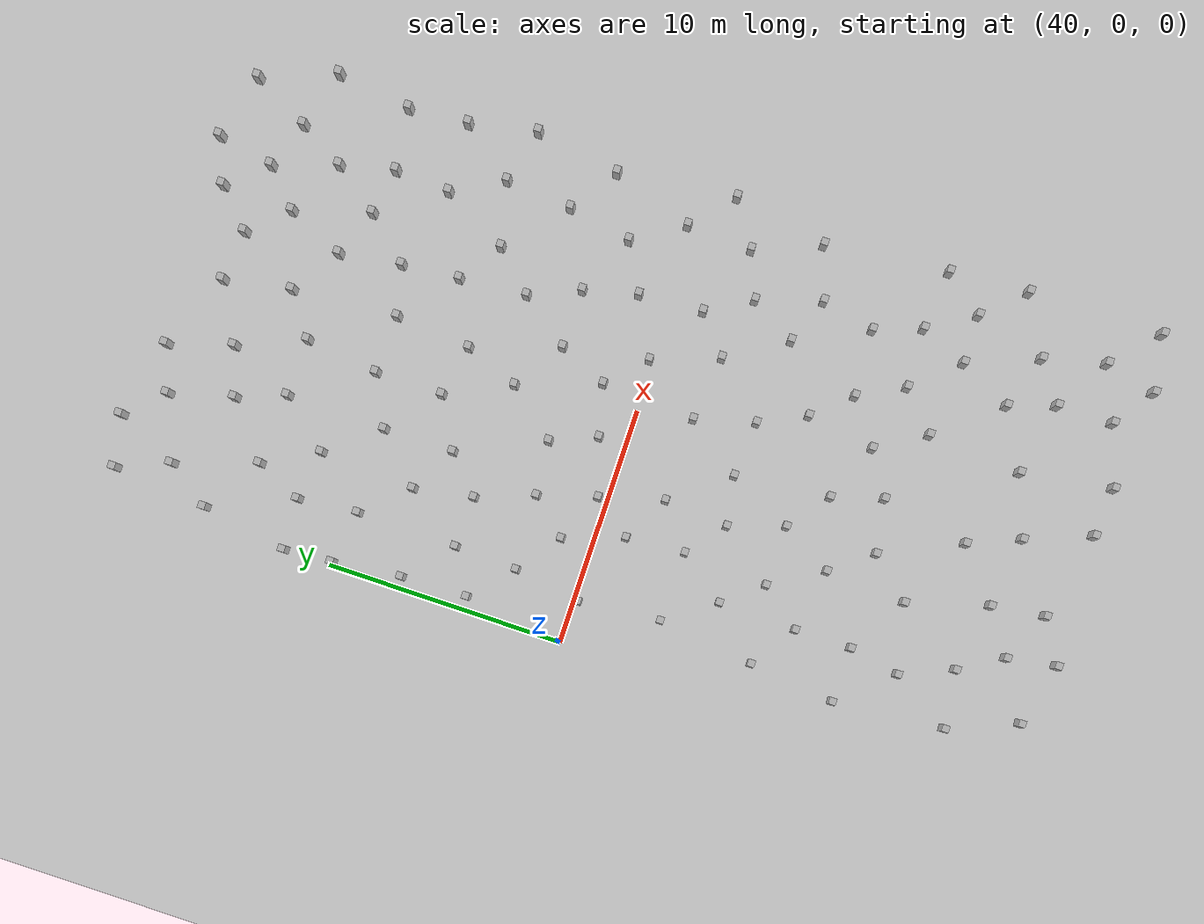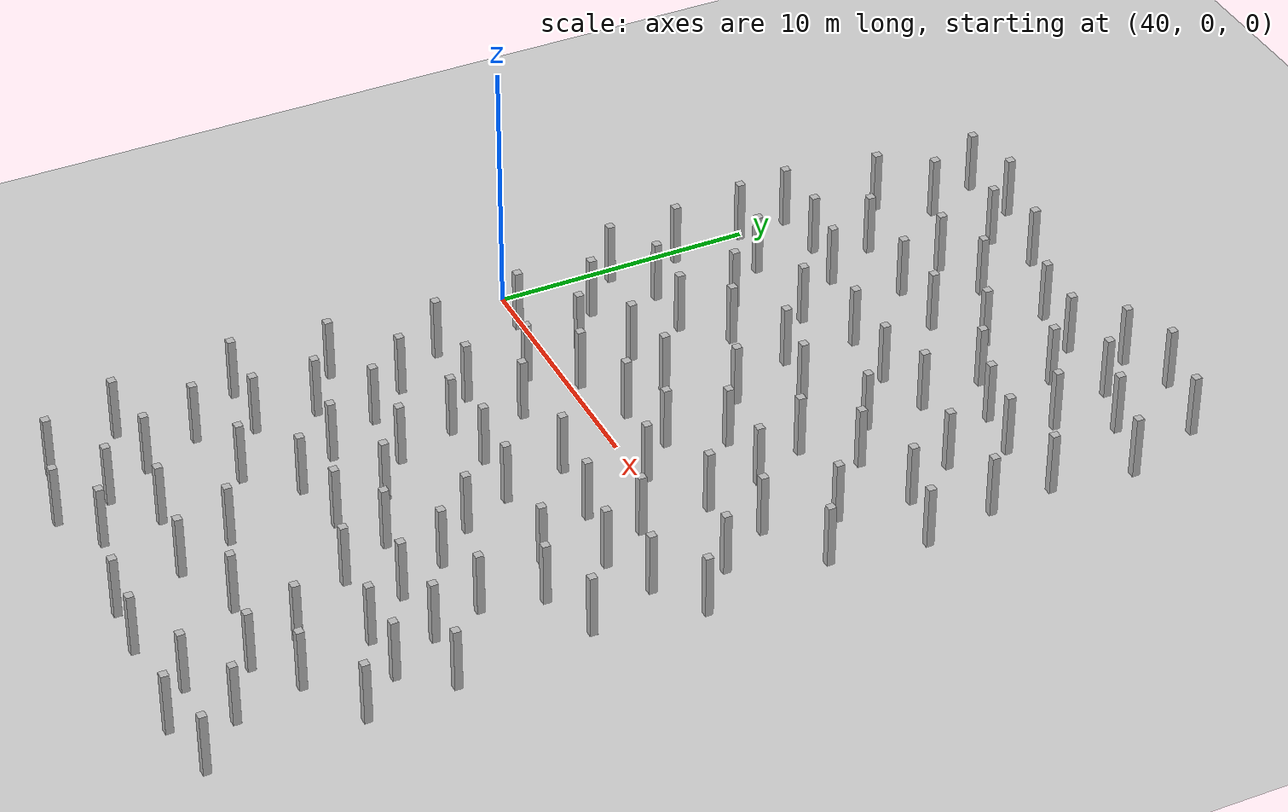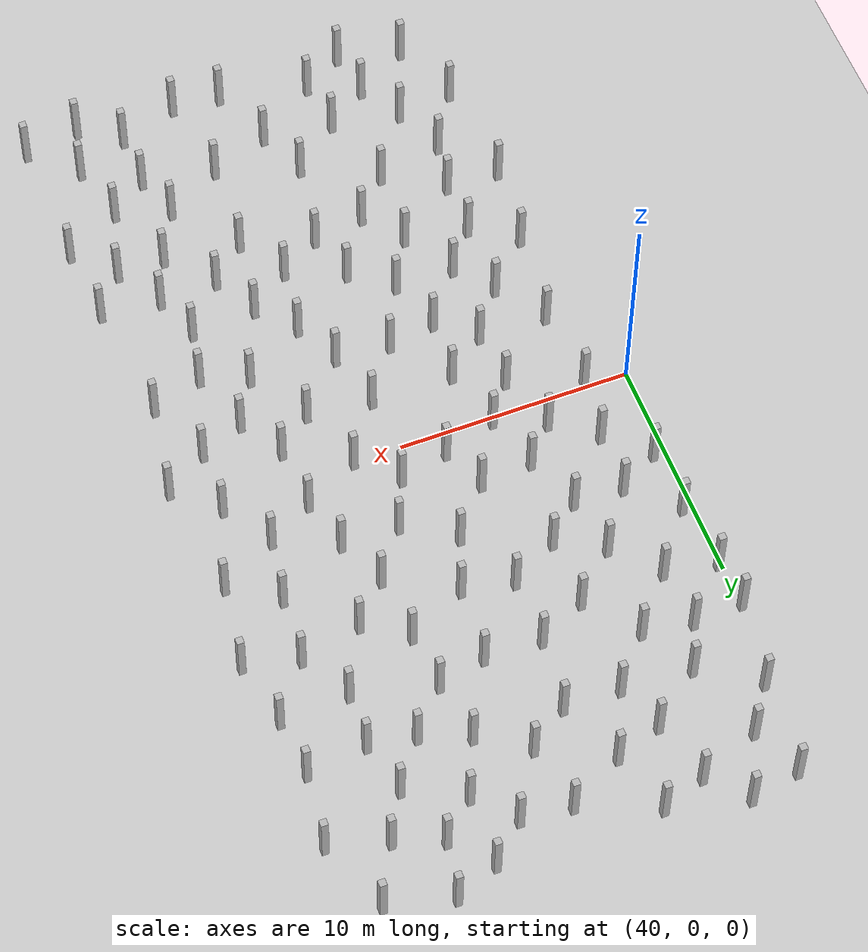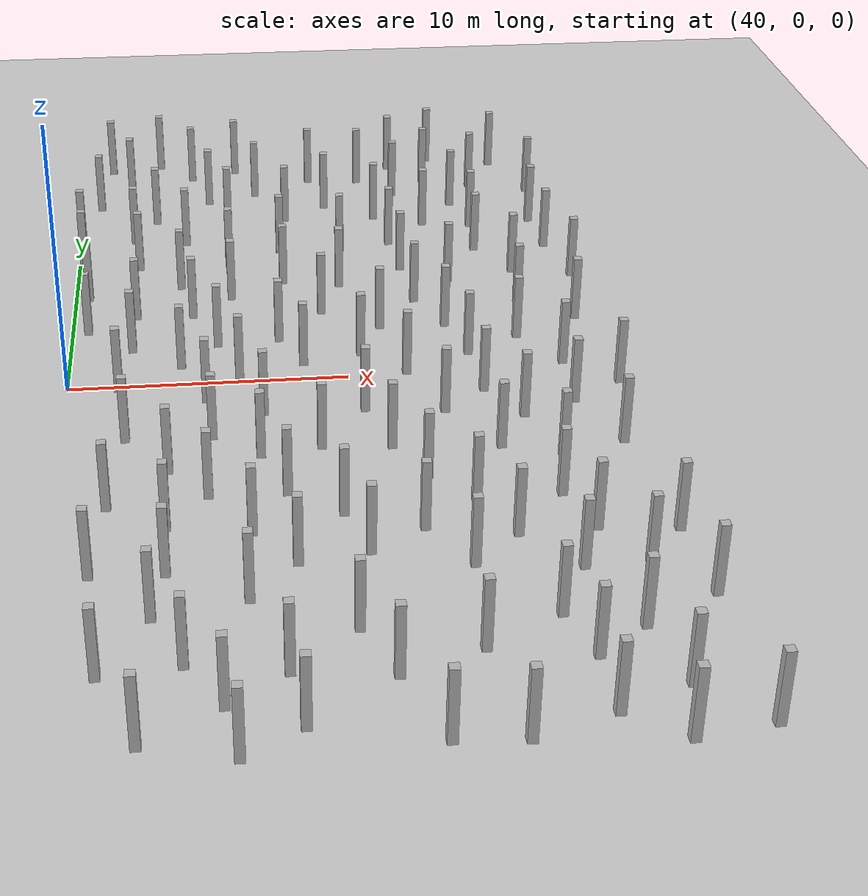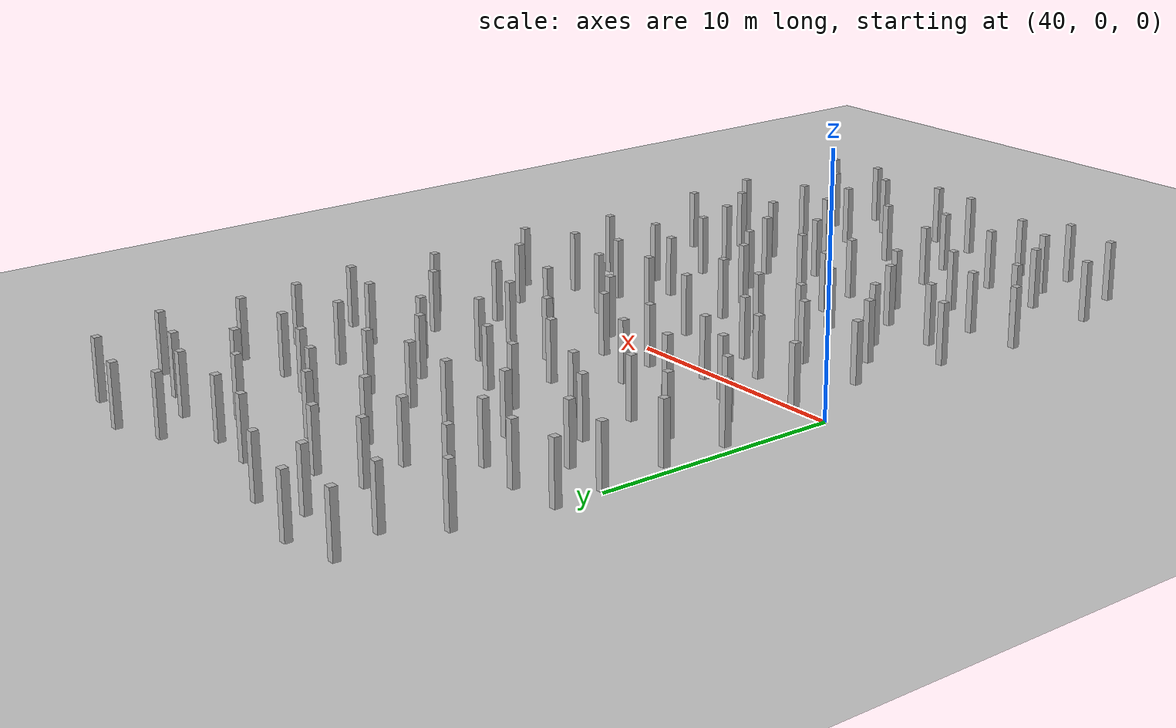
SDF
<sdf version="1.6">
 <world name="random_boxes_100x40_600">
  <include><uri>model://sun</uri></include>
  <include><uri>model://ground_plane</uri></include>
  <model name="box_96">
   <static>true</static>
   <pose>40.504 6.997 1.250 0 0 0</pose>
   <link name="link">
    <visual name="visual"><geometry><box><size>0.3 0.3 2.5</size></box></geometry></visual>
    <collision name="collision"><geometry><box><size>0.3 0.3 2.5</size></box></geometry></collision>
   </link>
  </model>
  <model name="box_112">
   <static>true</static>
   <pose>40.581 4.208 1.250 0 0 0</pose>
   <link name="link">
    <visual name="visual"><geometry><box><size>0.3 0.3 2.5</size></box></geometry></visual>
    <collision name="collision"><geometry><box><size>0.3 0.3 2.5</size></box></geometry></collision>
   </link>
  </model>
  <model name="box_133">
   <static>true</static>
   <pose>40.184 9.882 1.250 0 0 0</pose>
   <link name="link">
    <visual name="visual"><geometry><box><size>0.3 0.3 2.5</size></box></geometry></visual>
    <collision name="collision"><geometry><box><size>0.3 0.3 2.5</size></box></geometry></collision>
   </link>
  </model>
  <model name="box_139">
   <static>true</static>
   <pose>42.430 9.506 1.250 0 0 0</pose>
   <link name="link">
    <visual name="visual"><geometry><box><size>0.3 0.3 2.5</size></box></geometry></visual>
    <collision name="collision"><geometry><box><size>0.3 0.3 2.5</size></box></geometry></collision>
   </link>
  </model>
  <model name="box_142">
   <static>true</static>
   <pose>44.306 11.709 1.250 0 0 0</pose>
   <link name="link">
    <visual name="visual"><geometry><box><size>0.3 0.3 2.5</size></box></geometry></visual>
    <collision name="collision"><geometry><box><size>0.3 0.3 2.5</size></box></geometry></collision>
   </link>
  </model>
  <model name="box_146">
   <static>true</static>
   <pose>46.075 13.763 1.250 0 0 0</pose>
   <link name="link">
    <visual name="visual"><geometry><box><size>0.3 0.3 2.5</size></box></geometry></visual>
    <collision name="collision"><geometry><box><size>0.3 0.3 2.5</size></box></geometry></collision>
   </link>
  </model>
  <model name="box_152">
   <static>true</static>
   <pose>42.374 5.282 1.250 0 0 0</pose>
   <link name="link">
    <visual name="visual"><geometry><box><size>0.3 0.3 2.5</size></box></geometry></visual>
    <collision name="collision"><geometry><box><size>0.3 0.3 2.5</size></box></geometry></collision>
   </link>
  </model>
  <model name="box_153">
   <static>true</static>
   <pose>48.497 13.717 1.250 0 0 0</pose>
   <link name="link">
    <visual name="visual"><geometry><box><size>0.3 0.3 2.5</size></box></geometry></visual>
    <collision name="collision"><geometry><box><size>0.3 0.3 2.5</size></box></geometry></collision>
   </link>
  </model>
  <model name="box_157">
   <static>true</static>
   <pose>42.194 12.027 1.250 0 0 0</pose>
   <link name="link">
    <visual name="visual"><geometry><box><size>0.3 0.3 2.5</size></box></geometry></visual>
    <collision name="collision"><geometry><box><size>0.3 0.3 2.5</size></box></geometry></collision>
   </link>
  </model>
  <model name="box_159">
   <static>true</static>
   <pose>40.045 11.901 1.250 0 0 0</pose>
   <link name="link">
    <visual name="visual"><geometry><box><size>0.3 0.3 2.5</size></box></geometry></visual>
    <collision name="collision"><geometry><box><size>0.3 0.3 2.5</size></box></geometry></collision>
   </link>
  </model>
  <model name="box_160">
   <static>true</static>
   <pose>42.262 2.644 1.250 0 0 0</pose>
   <link name="link">
    <visual name="visual"><geometry><box><size>0.3 0.3 2.5</size></box></geometry></visual>
    <collision name="collision"><geometry><box><size>0.3 0.3 2.5</size></box></geometry></collision>
   </link>
  </model>
  <model name="box_167">
   <static>true</static>
   <pose>41.956 17.371 1.250 0 0 0</pose>
   <link name="link">
    <visual name="visual"><geometry><box><size>0.3 0.3 2.5</size></box></geometry></visual>
    <collision name="collision"><geometry><box><size>0.3 0.3 2.5</size></box></geometry></collision>
   </link>
  </model>
  <model name="box_169">
   <static>true</static>
   <pose>44.077 7.694 1.250 0 0 0</pose>
   <link name="link">
    <visual name="visual"><geometry><box><size>0.3 0.3 2.5</size></box></geometry></visual>
    <collision name="collision"><geometry><box><size>0.3 0.3 2.5</size></box></geometry></collision>
   </link>
  </model>
  <model name="box_178">
   <static>true</static>
   <pose>50.248 14.978 1.250 0 0 0</pose>
   <link name="link">
    <visual name="visual"><geometry><box><size>0.3 0.3 2.5</size></box></geometry></visual>
    <collision name="collision"><geometry><box><size>0.3 0.3 2.5</size></box></geometry></collision>
   </link>
  </model>
  <model name="box_179">
   <static>true</static>
   <pose>41.065 19.530 1.250 0 0 0</pose>
   <link name="link">
    <visual name="visual"><geometry><box><size>0.3 0.3 2.5</size></box></geometry></visual>
    <collision name="collision"><geometry><box><size>0.3 0.3 2.5</size></box></geometry></collision>
   </link>
  </model>
  <model name="box_181">
   <static>true</static>
   <pose>52.267 13.645 1.250 0 0 0</pose>
   <link name="link">
    <visual name="visual"><geometry><box><size>0.3 0.3 2.5</size></box></geometry></visual>
    <collision name="collision"><geometry><box><size>0.3 0.3 2.5</size></box></geometry></collision>
   </link>
  </model>
  <model name="box_188">
   <static>true</static>
   <pose>54.278 12.858 1.250 0 0 0</pose>
   <link name="link">
    <visual name="visual"><geometry><box><size>0.3 0.3 2.5</size></box></geometry></visual>
    <collision name="collision"><geometry><box><size>0.3 0.3 2.5</size></box></geometry></collision>
   </link>
  </model>
  <model name="box_191">
   <static>true</static>
   <pose>44.047 1.301 1.250 0 0 0</pose>
   <link name="link">
    <visual name="visual"><geometry><box><size>0.3 0.3 2.5</size></box></geometry></visual>
    <collision name="collision"><geometry><box><size>0.3 0.3 2.5</size></box></geometry></collision>
   </link>
  </model>
  <model name="box_193">
   <static>true</static>
   <pose>52.640 11.046 1.250 0 0 0</pose>
   <link name="link">
    <visual name="visual"><geometry><box><size>0.3 0.3 2.5</size></box></geometry></visual>
    <collision name="collision"><geometry><box><size>0.3 0.3 2.5</size></box></geometry></collision>
   </link>
  </model>
  <model name="box_195">
   <static>true</static>
   <pose>56.251 12.506 1.250 0 0 0</pose>
   <link name="link">
    <visual name="visual"><geometry><box><size>0.3 0.3 2.5</size></box></geometry></visual>
    <collision name="collision"><geometry><box><size>0.3 0.3 2.5</size></box></geometry></collision>
   </link>
  </model>
  <model name="box_198">
   <static>true</static>
   <pose>56.090 10.172 1.250 0 0 0</pose>
   <link name="link">
    <visual name="visual"><geometry><box><size>0.3 0.3 2.5</size></box></geometry></visual>
    <collision name="collision"><geometry><box><size>0.3 0.3 2.5</size></box></geometry></collision>
   </link>
  </model>
  <model name="box_200">
   <static>true</static>
   <pose>55.722 14.779 1.250 0 0 0</pose>
   <link name="link">
    <visual name="visual"><geometry><box><size>0.3 0.3 2.5</size></box></geometry></visual>
    <collision name="collision"><geometry><box><size>0.3 0.3 2.5</size></box></geometry></collision>
   </link>
  </model>
  <model name="box_203">
   <static>true</static>
   <pose>43.081 13.954 1.250 0 0 0</pose>
   <link name="link">
    <visual name="visual"><geometry><box><size>0.3 0.3 2.5</size></box></geometry></visual>
    <collision name="collision"><geometry><box><size>0.3 0.3 2.5</size></box></geometry></collision>
   </link>
  </model>
  <model name="box_206">
   <static>true</static>
   <pose>56.833 16.699 1.250 0 0 0</pose>
   <link name="link">
    <visual name="visual"><geometry><box><size>0.3 0.3 2.5</size></box></geometry></visual>
    <collision name="collision"><geometry><box><size>0.3 0.3 2.5</size></box></geometry></collision>
   </link>
  </model>
  <model name="box_208">
   <static>true</static>
   <pose>45.404 2.808 1.250 0 0 0</pose>
   <link name="link">
    <visual name="visual"><geometry><box><size>0.3 0.3 2.5</size></box></geometry></visual>
    <collision name="collision"><geometry><box><size>0.3 0.3 2.5</size></box></geometry></collision>
   </link>
  </model>
  <model name="box_209">
   <static>true</static>
   <pose>46.119 0.390 1.250 0 0 0</pose>
   <link name="link">
    <visual name="visual"><geometry><box><size>0.3 0.3 2.5</size></box></geometry></visual>
    <collision name="collision"><geometry><box><size>0.3 0.3 2.5</size></box></geometry></collision>
   </link>
  </model>
  <model name="box_212">
   <static>true</static>
   <pose>40.682 15.530 1.250 0 0 0</pose>
   <link name="link">
    <visual name="visual"><geometry><box><size>0.3 0.3 2.5</size></box></geometry></visual>
    <collision name="collision"><geometry><box><size>0.3 0.3 2.5</size></box></geometry></collision>
   </link>
  </model>
  <model name="box_215">
   <static>true</static>
   <pose>59.290 15.971 1.250 0 0 0</pose>
   <link name="link">
    <visual name="visual"><geometry><box><size>0.3 0.3 2.5</size></box></geometry></visual>
    <collision name="collision"><geometry><box><size>0.3 0.3 2.5</size></box></geometry></collision>
   </link>
  </model>
  <model name="box_217">
   <static>true</static>
   <pose>58.841 12.821 1.250 0 0 0</pose>
   <link name="link">
    <visual name="visual"><geometry><box><size>0.3 0.3 2.5</size></box></geometry></visual>
    <collision name="collision"><geometry><box><size>0.3 0.3 2.5</size></box></geometry></collision>
   </link>
  </model>
  <model name="box_218">
   <static>true</static>
   <pose>46.013 9.579 1.250 0 0 0</pose>
   <link name="link">
    <visual name="visual"><geometry><box><size>0.3 0.3 2.5</size></box></geometry></visual>
    <collision name="collision"><geometry><box><size>0.3 0.3 2.5</size></box></geometry></collision>
   </link>
  </model>
  <model name="box_219">
   <static>true</static>
   <pose>59.024 10.299 1.250 0 0 0</pose>
   <link name="link">
    <visual name="visual"><geometry><box><size>0.3 0.3 2.5</size></box></geometry></visual>
    <collision name="collision"><geometry><box><size>0.3 0.3 2.5</size></box></geometry></collision>
   </link>
  </model>
  <model name="box_221">
   <static>true</static>
   <pose>46.872 -2.263 1.250 0 0 0</pose>
   <link name="link">
    <visual name="visual"><geometry><box><size>0.3 0.3 2.5</size></box></geometry></visual>
    <collision name="collision"><geometry><box><size>0.3 0.3 2.5</size></box></geometry></collision>
   </link>
  </model>
  <model name="box_222">
   <static>true</static>
   <pose>45.322 15.791 1.250 0 0 0</pose>
   <link name="link">
    <visual name="visual"><geometry><box><size>0.3 0.3 2.5</size></box></geometry></visual>
    <collision name="collision"><geometry><box><size>0.3 0.3 2.5</size></box></geometry></collision>
   </link>
  </model>
  <model name="box_223">
   <static>true</static>
   <pose>58.108 19.089 1.250 0 0 0</pose>
   <link name="link">
    <visual name="visual"><geometry><box><size>0.3 0.3 2.5</size></box></geometry></visual>
    <collision name="collision"><geometry><box><size>0.3 0.3 2.5</size></box></geometry></collision>
   </link>
  </model>
  <model name="box_224">
   <static>true</static>
   <pose>48.095 7.789 1.250 0 0 0</pose>
   <link name="link">
    <visual name="visual"><geometry><box><size>0.3 0.3 2.5</size></box></geometry></visual>
    <collision name="collision"><geometry><box><size>0.3 0.3 2.5</size></box></geometry></collision>
   </link>
  </model>
  <model name="box_227">
   <static>true</static>
   <pose>59.597 7.456 1.250 0 0 0</pose>
   <link name="link">
    <visual name="visual"><geometry><box><size>0.3 0.3 2.5</size></box></geometry></visual>
    <collision name="collision"><geometry><box><size>0.3 0.3 2.5</size></box></geometry></collision>
   </link>
  </model>
  <model name="box_232">
   <static>true</static>
   <pose>49.408 5.093 1.250 0 0 0</pose>
   <link name="link">
    <visual name="visual"><geometry><box><size>0.3 0.3 2.5</size></box></geometry></visual>
    <collision name="collision"><geometry><box><size>0.3 0.3 2.5</size></box></geometry></collision>
   </link>
  </model>
  <model name="box_235">
   <static>true</static>
   <pose>47.673 3.040 1.250 0 0 0</pose>
   <link name="link">
    <visual name="visual"><geometry><box><size>0.3 0.3 2.5</size></box></geometry></visual>
    <collision name="collision"><geometry><box><size>0.3 0.3 2.5</size></box></geometry></collision>
   </link>
  </model>
  <model name="box_236">
   <static>true</static>
   <pose>45.078 -3.683 1.250 0 0 0</pose>
   <link name="link">
    <visual name="visual"><geometry><box><size>0.3 0.3 2.5</size></box></geometry></visual>
    <collision name="collision"><geometry><box><size>0.3 0.3 2.5</size></box></geometry></collision>
   </link>
  </model>
  <model name="box_237">
   <static>true</static>
   <pose>42.136 -3.605 1.250 0 0 0</pose>
   <link name="link">
    <visual name="visual"><geometry><box><size>0.3 0.3 2.5</size></box></geometry></visual>
    <collision name="collision"><geometry><box><size>0.3 0.3 2.5</size></box></geometry></collision>
   </link>
  </model>
  <model name="box_239">
   <static>true</static>
   <pose>52.842 8.625 1.250 0 0 0</pose>
   <link name="link">
    <visual name="visual"><geometry><box><size>0.3 0.3 2.5</size></box></geometry></visual>
    <collision name="collision"><geometry><box><size>0.3 0.3 2.5</size></box></geometry></collision>
   </link>
  </model>
  <model name="box_241">
   <static>true</static>
   <pose>46.654 -4.972 1.250 0 0 0</pose>
   <link name="link">
    <visual name="visual"><geometry><box><size>0.3 0.3 2.5</size></box></geometry></visual>
    <collision name="collision"><geometry><box><size>0.3 0.3 2.5</size></box></geometry></collision>
   </link>
  </model>
  <model name="box_242">
   <static>true</static>
   <pose>47.407 -7.288 1.250 0 0 0</pose>
   <link name="link">
    <visual name="visual"><geometry><box><size>0.3 0.3 2.5</size></box></geometry></visual>
    <collision name="collision"><geometry><box><size>0.3 0.3 2.5</size></box></geometry></collision>
   </link>
  </model>
  <model name="box_243">
   <static>true</static>
   <pose>49.747 17.812 1.250 0 0 0</pose>
   <link name="link">
    <visual name="visual"><geometry><box><size>0.3 0.3 2.5</size></box></geometry></visual>
    <collision name="collision"><geometry><box><size>0.3 0.3 2.5</size></box></geometry></collision>
   </link>
  </model>
  <model name="box_246">
   <static>true</static>
   <pose>49.115 -8.603 1.250 0 0 0</pose>
   <link name="link">
    <visual name="visual"><geometry><box><size>0.3 0.3 2.5</size></box></geometry></visual>
    <collision name="collision"><geometry><box><size>0.3 0.3 2.5</size></box></geometry></collision>
   </link>
  </model>
  <model name="box_247">
   <static>true</static>
   <pose>51.511 3.712 1.250 0 0 0</pose>
   <link name="link">
    <visual name="visual"><geometry><box><size>0.3 0.3 2.5</size></box></geometry></visual>
    <collision name="collision"><geometry><box><size>0.3 0.3 2.5</size></box></geometry></collision>
   </link>
  </model>
  <model name="box_255">
   <static>true</static>
   <pose>46.195 -9.420 1.250 0 0 0</pose>
   <link name="link">
    <visual name="visual"><geometry><box><size>0.3 0.3 2.5</size></box></geometry></visual>
    <collision name="collision"><geometry><box><size>0.3 0.3 2.5</size></box></geometry></collision>
   </link>
  </model>
  <model name="box_257">
   <static>true</static>
   <pose>44.616 18.444 1.250 0 0 0</pose>
   <link name="link">
    <visual name="visual"><geometry><box><size>0.3 0.3 2.5</size></box></geometry></visual>
    <collision name="collision"><geometry><box><size>0.3 0.3 2.5</size></box></geometry></collision>
   </link>
  </model>
  <model name="box_260">
   <static>true</static>
   <pose>51.550 -9.616 1.250 0 0 0</pose>
   <link name="link">
    <visual name="visual"><geometry><box><size>0.3 0.3 2.5</size></box></geometry></visual>
    <collision name="collision"><geometry><box><size>0.3 0.3 2.5</size></box></geometry></collision>
   </link>
  </model>
  <model name="box_261">
   <static>true</static>
   <pose>53.063 5.789 1.250 0 0 0</pose>
   <link name="link">
    <visual name="visual"><geometry><box><size>0.3 0.3 2.5</size></box></geometry></visual>
    <collision name="collision"><geometry><box><size>0.3 0.3 2.5</size></box></geometry></collision>
   </link>
  </model>
  <model name="box_262">
   <static>true</static>
   <pose>43.588 -5.662 1.250 0 0 0</pose>
   <link name="link">
    <visual name="visual"><geometry><box><size>0.3 0.3 2.5</size></box></geometry></visual>
    <collision name="collision"><geometry><box><size>0.3 0.3 2.5</size></box></geometry></collision>
   </link>
  </model>
  <model name="box_271">
   <static>true</static>
   <pose>44.512 5.201 1.250 0 0 0</pose>
   <link name="link">
    <visual name="visual"><geometry><box><size>0.3 0.3 2.5</size></box></geometry></visual>
    <collision name="collision"><geometry><box><size>0.3 0.3 2.5</size></box></geometry></collision>
   </link>
  </model>
  <model name="box_273">
   <static>true</static>
   <pose>50.602 1.669 1.250 0 0 0</pose>
   <link name="link">
    <visual name="visual"><geometry><box><size>0.3 0.3 2.5</size></box></geometry></visual>
    <collision name="collision"><geometry><box><size>0.3 0.3 2.5</size></box></geometry></collision>
   </link>
  </model>
  <model name="box_274">
   <static>true</static>
   <pose>52.125 0.177 1.250 0 0 0</pose>
   <link name="link">
    <visual name="visual"><geometry><box><size>0.3 0.3 2.5</size></box></geometry></visual>
    <collision name="collision"><geometry><box><size>0.3 0.3 2.5</size></box></geometry></collision>
   </link>
  </model>
  <model name="box_276">
   <static>true</static>
   <pose>59.013 3.860 1.250 0 0 0</pose>
   <link name="link">
    <visual name="visual"><geometry><box><size>0.3 0.3 2.5</size></box></geometry></visual>
    <collision name="collision"><geometry><box><size>0.3 0.3 2.5</size></box></geometry></collision>
   </link>
  </model>
  <model name="box_277">
   <static>true</static>
   <pose>50.564 10.546 1.250 0 0 0</pose>
   <link name="link">
    <visual name="visual"><geometry><box><size>0.3 0.3 2.5</size></box></geometry></visual>
    <collision name="collision"><geometry><box><size>0.3 0.3 2.5</size></box></geometry></collision>
   </link>
  </model>
  <model name="box_278">
   <static>true</static>
   <pose>52.002 -6.739 1.250 0 0 0</pose>
   <link name="link">
    <visual name="visual"><geometry><box><size>0.3 0.3 2.5</size></box></geometry></visual>
    <collision name="collision"><geometry><box><size>0.3 0.3 2.5</size></box></geometry></collision>
   </link>
  </model>
  <model name="box_279">
   <static>true</static>
   <pose>44.910 -1.213 1.250 0 0 0</pose>
   <link name="link">
    <visual name="visual"><geometry><box><size>0.3 0.3 2.5</size></box></geometry></visual>
    <collision name="collision"><geometry><box><size>0.3 0.3 2.5</size></box></geometry></collision>
   </link>
  </model>
  <model name="box_280">
   <static>true</static>
   <pose>54.838 17.438 1.250 0 0 0</pose>
   <link name="link">
    <visual name="visual"><geometry><box><size>0.3 0.3 2.5</size></box></geometry></visual>
    <collision name="collision"><geometry><box><size>0.3 0.3 2.5</size></box></geometry></collision>
   </link>
  </model>
  <model name="box_281">
   <static>true</static>
   <pose>46.527 19.153 1.250 0 0 0</pose>
   <link name="link">
    <visual name="visual"><geometry><box><size>0.3 0.3 2.5</size></box></geometry></visual>
    <collision name="collision"><geometry><box><size>0.3 0.3 2.5</size></box></geometry></collision>
   </link>
  </model>
  <model name="box_284">
   <static>true</static>
   <pose>51.051 -4.790 1.250 0 0 0</pose>
   <link name="link">
    <visual name="visual"><geometry><box><size>0.3 0.3 2.5</size></box></geometry></visual>
    <collision name="collision"><geometry><box><size>0.3 0.3 2.5</size></box></geometry></collision>
   </link>
  </model>
  <model name="box_285">
   <static>true</static>
   <pose>48.465 1.135 1.250 0 0 0</pose>
   <link name="link">
    <visual name="visual"><geometry><box><size>0.3 0.3 2.5</size></box></geometry></visual>
    <collision name="collision"><geometry><box><size>0.3 0.3 2.5</size></box></geometry></collision>
   </link>
  </model>
  <model name="box_286">
   <static>true</static>
   <pose>41.823 -0.169 1.250 0 0 0</pose>
   <link name="link">
    <visual name="visual"><geometry><box><size>0.3 0.3 2.5</size></box></geometry></visual>
    <collision name="collision"><geometry><box><size>0.3 0.3 2.5</size></box></geometry></collision>
   </link>
  </model>
  <model name="box_290">
   <static>true</static>
   <pose>57.287 8.044 1.250 0 0 0</pose>
   <link name="link">
    <visual name="visual"><geometry><box><size>0.3 0.3 2.5</size></box></geometry></visual>
    <collision name="collision"><geometry><box><size>0.3 0.3 2.5</size></box></geometry></collision>
   </link>
  </model>
  <model name="box_296">
   <static>true</static>
   <pose>57.036 5.219 1.250 0 0 0</pose>
   <link name="link">
    <visual name="visual"><geometry><box><size>0.3 0.3 2.5</size></box></geometry></visual>
    <collision name="collision"><geometry><box><size>0.3 0.3 2.5</size></box></geometry></collision>
   </link>
  </model>
  <model name="box_297">
   <static>true</static>
   <pose>59.614 -1.136 1.250 0 0 0</pose>
   <link name="link">
    <visual name="visual"><geometry><box><size>0.3 0.3 2.5</size></box></geometry></visual>
    <collision name="collision"><geometry><box><size>0.3 0.3 2.5</size></box></geometry></collision>
   </link>
  </model>
  <model name="box_299">
   <static>true</static>
   <pose>53.134 -2.615 1.250 0 0 0</pose>
   <link name="link">
    <visual name="visual"><geometry><box><size>0.3 0.3 2.5</size></box></geometry></visual>
    <collision name="collision"><geometry><box><size>0.3 0.3 2.5</size></box></geometry></collision>
   </link>
  </model>
  <model name="box_300">
   <static>true</static>
   <pose>48.109 10.636 1.250 0 0 0</pose>
   <link name="link">
    <visual name="visual"><geometry><box><size>0.3 0.3 2.5</size></box></geometry></visual>
    <collision name="collision"><geometry><box><size>0.3 0.3 2.5</size></box></geometry></collision>
   </link>
  </model>
  <model name="box_301">
   <static>true</static>
   <pose>43.514 -8.942 1.250 0 0 0</pose>
   <link name="link">
    <visual name="visual"><geometry><box><size>0.3 0.3 2.5</size></box></geometry></visual>
    <collision name="collision"><geometry><box><size>0.3 0.3 2.5</size></box></geometry></collision>
   </link>
  </model>
  <model name="box_302">
   <static>true</static>
   <pose>53.442 19.043 1.250 0 0 0</pose>
   <link name="link">
    <visual name="visual"><geometry><box><size>0.3 0.3 2.5</size></box></geometry></visual>
    <collision name="collision"><geometry><box><size>0.3 0.3 2.5</size></box></geometry></collision>
   </link>
  </model>
  <model name="box_303">
   <static>true</static>
   <pose>47.329 16.483 1.250 0 0 0</pose>
   <link name="link">
    <visual name="visual"><geometry><box><size>0.3 0.3 2.5</size></box></geometry></visual>
    <collision name="collision"><geometry><box><size>0.3 0.3 2.5</size></box></geometry></collision>
   </link>
  </model>
  <model name="box_307">
   <static>true</static>
   <pose>54.701 -5.085 1.250 0 0 0</pose>
   <link name="link">
    <visual name="visual"><geometry><box><size>0.3 0.3 2.5</size></box></geometry></visual>
    <collision name="collision"><geometry><box><size>0.3 0.3 2.5</size></box></geometry></collision>
   </link>
  </model>
  <model name="box_310">
   <static>true</static>
   <pose>56.658 -5.843 1.250 0 0 0</pose>
   <link name="link">
    <visual name="visual"><geometry><box><size>0.3 0.3 2.5</size></box></geometry></visual>
    <collision name="collision"><geometry><box><size>0.3 0.3 2.5</size></box></geometry></collision>
   </link>
  </model>
  <model name="box_315">
   <static>true</static>
   <pose>54.546 1.432 1.250 0 0 0</pose>
   <link name="link">
    <visual name="visual"><geometry><box><size>0.3 0.3 2.5</size></box></geometry></visual>
    <collision name="collision"><geometry><box><size>0.3 0.3 2.5</size></box></geometry></collision>
   </link>
  </model>
  <model name="box_316">
   <static>true</static>
   <pose>46.019 6.617 1.250 0 0 0</pose>
   <link name="link">
    <visual name="visual"><geometry><box><size>0.3 0.3 2.5</size></box></geometry></visual>
    <collision name="collision"><geometry><box><size>0.3 0.3 2.5</size></box></geometry></collision>
   </link>
  </model>
  <model name="box_317">
   <static>true</static>
   <pose>54.383 -10.194 1.250 0 0 0</pose>
   <link name="link">
    <visual name="visual"><geometry><box><size>0.3 0.3 2.5</size></box></geometry></visual>
    <collision name="collision"><geometry><box><size>0.3 0.3 2.5</size></box></geometry></collision>
   </link>
  </model>
  <model name="box_318">
   <static>true</static>
   <pose>57.740 -2.351 1.250 0 0 0</pose>
   <link name="link">
    <visual name="visual"><geometry><box><size>0.3 0.3 2.5</size></box></geometry></visual>
    <collision name="collision"><geometry><box><size>0.3 0.3 2.5</size></box></geometry></collision>
   </link>
  </model>
  <model name="box_321">
   <static>true</static>
   <pose>55.821 -3.155 1.250 0 0 0</pose>
   <link name="link">
    <visual name="visual"><geometry><box><size>0.3 0.3 2.5</size></box></geometry></visual>
    <collision name="collision"><geometry><box><size>0.3 0.3 2.5</size></box></geometry></collision>
   </link>
  </model>
  <model name="box_327">
   <static>true</static>
   <pose>54.619 7.412 1.250 0 0 0</pose>
   <link name="link">
    <visual name="visual"><geometry><box><size>0.3 0.3 2.5</size></box></geometry></visual>
    <collision name="collision"><geometry><box><size>0.3 0.3 2.5</size></box></geometry></collision>
   </link>
  </model>
  <model name="box_331">
   <static>true</static>
   <pose>50.272 7.360 1.250 0 0 0</pose>
   <link name="link">
    <visual name="visual"><geometry><box><size>0.3 0.3 2.5</size></box></geometry></visual>
    <collision name="collision"><geometry><box><size>0.3 0.3 2.5</size></box></geometry></collision>
   </link>
  </model>
  <model name="box_333">
   <static>true</static>
   <pose>56.534 2.529 1.250 0 0 0</pose>
   <link name="link">
    <visual name="visual"><geometry><box><size>0.3 0.3 2.5</size></box></geometry></visual>
    <collision name="collision"><geometry><box><size>0.3 0.3 2.5</size></box></geometry></collision>
   </link>
  </model>
  <model name="box_334">
   <static>true</static>
   <pose>56.886 -10.081 1.250 0 0 0</pose>
   <link name="link">
    <visual name="visual"><geometry><box><size>0.3 0.3 2.5</size></box></geometry></visual>
    <collision name="collision"><geometry><box><size>0.3 0.3 2.5</size></box></geometry></collision>
   </link>
  </model>
  <model name="box_336">
   <static>true</static>
   <pose>59.427 -10.358 1.250 0 0 0</pose>
   <link name="link">
    <visual name="visual"><geometry><box><size>0.3 0.3 2.5</size></box></geometry></visual>
    <collision name="collision"><geometry><box><size>0.3 0.3 2.5</size></box></geometry></collision>
   </link>
  </model>
  <model name="box_338">
   <static>true</static>
   <pose>43.518 -11.326 1.250 0 0 0</pose>
   <link name="link">
    <visual name="visual"><geometry><box><size>0.3 0.3 2.5</size></box></geometry></visual>
    <collision name="collision"><geometry><box><size>0.3 0.3 2.5</size></box></geometry></collision>
   </link>
  </model>
  <model name="box_339">
   <static>true</static>
   <pose>53.372 -8.270 1.250 0 0 0</pose>
   <link name="link">
    <visual name="visual"><geometry><box><size>0.3 0.3 2.5</size></box></geometry></visual>
    <collision name="collision"><geometry><box><size>0.3 0.3 2.5</size></box></geometry></collision>
   </link>
  </model>
  <model name="box_340">
   <static>true</static>
   <pose>47.503 -11.113 1.250 0 0 0</pose>
   <link name="link">
    <visual name="visual"><geometry><box><size>0.3 0.3 2.5</size></box></geometry></visual>
    <collision name="collision"><geometry><box><size>0.3 0.3 2.5</size></box></geometry></collision>
   </link>
  </model>
  <model name="box_345">
   <static>true</static>
   <pose>59.668 -13.712 1.250 0 0 0</pose>
   <link name="link">
    <visual name="visual"><geometry><box><size>0.3 0.3 2.5</size></box></geometry></visual>
    <collision name="collision"><geometry><box><size>0.3 0.3 2.5</size></box></geometry></collision>
   </link>
  </model>
  <model name="box_346">
   <static>true</static>
   <pose>50.386 -2.295 1.250 0 0 0</pose>
   <link name="link">
    <visual name="visual"><geometry><box><size>0.3 0.3 2.5</size></box></geometry></visual>
    <collision name="collision"><geometry><box><size>0.3 0.3 2.5</size></box></geometry></collision>
   </link>
  </model>
  <model name="box_347">
   <static>true</static>
   <pose>43.100 -13.463 1.250 0 0 0</pose>
   <link name="link">
    <visual name="visual"><geometry><box><size>0.3 0.3 2.5</size></box></geometry></visual>
    <collision name="collision"><geometry><box><size>0.3 0.3 2.5</size></box></geometry></collision>
   </link>
  </model>
  <model name="box_353">
   <static>true</static>
   <pose>44.026 -15.653 1.250 0 0 0</pose>
   <link name="link">
    <visual name="visual"><geometry><box><size>0.3 0.3 2.5</size></box></geometry></visual>
    <collision name="collision"><geometry><box><size>0.3 0.3 2.5</size></box></geometry></collision>
   </link>
  </model>
  <model name="box_354">
   <static>true</static>
   <pose>57.230 -15.042 1.250 0 0 0</pose>
   <link name="link">
    <visual name="visual"><geometry><box><size>0.3 0.3 2.5</size></box></geometry></visual>
    <collision name="collision"><geometry><box><size>0.3 0.3 2.5</size></box></geometry></collision>
   </link>
  </model>
  <model name="box_355">
   <static>true</static>
   <pose>54.945 -14.285 1.250 0 0 0</pose>
   <link name="link">
    <visual name="visual"><geometry><box><size>0.3 0.3 2.5</size></box></geometry></visual>
    <collision name="collision"><geometry><box><size>0.3 0.3 2.5</size></box></geometry></collision>
   </link>
  </model>
  <model name="box_356">
   <static>true</static>
   <pose>41.629 -7.658 1.250 0 0 0</pose>
   <link name="link">
    <visual name="visual"><geometry><box><size>0.3 0.3 2.5</size></box></geometry></visual>
    <collision name="collision"><geometry><box><size>0.3 0.3 2.5</size></box></geometry></collision>
   </link>
  </model>
  <model name="box_359">
   <static>true</static>
   <pose>56.171 -8.099 1.250 0 0 0</pose>
   <link name="link">
    <visual name="visual"><geometry><box><size>0.3 0.3 2.5</size></box></geometry></visual>
    <collision name="collision"><geometry><box><size>0.3 0.3 2.5</size></box></geometry></collision>
   </link>
  </model>
  <model name="box_364">
   <static>true</static>
   <pose>45.125 -17.461 1.250 0 0 0</pose>
   <link name="link">
    <visual name="visual"><geometry><box><size>0.3 0.3 2.5</size></box></geometry></visual>
    <collision name="collision"><geometry><box><size>0.3 0.3 2.5</size></box></geometry></collision>
   </link>
  </model>
  <model name="box_374">
   <static>true</static>
   <pose>54.705 -1.281 1.250 0 0 0</pose>
   <link name="link">
    <visual name="visual"><geometry><box><size>0.3 0.3 2.5</size></box></geometry></visual>
    <collision name="collision"><geometry><box><size>0.3 0.3 2.5</size></box></geometry></collision>
   </link>
  </model>
  <model name="box_377">
   <static>true</static>
   <pose>41.603 -15.954 1.250 0 0 0</pose>
   <link name="link">
    <visual name="visual"><geometry><box><size>0.3 0.3 2.5</size></box></geometry></visual>
    <collision name="collision"><geometry><box><size>0.3 0.3 2.5</size></box></geometry></collision>
   </link>
  </model>
  <model name="box_380">
   <static>true</static>
   <pose>46.957 -16.199 1.250 0 0 0</pose>
   <link name="link">
    <visual name="visual"><geometry><box><size>0.3 0.3 2.5</size></box></geometry></visual>
    <collision name="collision"><geometry><box><size>0.3 0.3 2.5</size></box></geometry></collision>
   </link>
  </model>
  <model name="box_381">
   <static>true</static>
   <pose>47.254 -18.465 1.250 0 0 0</pose>
   <link name="link">
    <visual name="visual"><geometry><box><size>0.3 0.3 2.5</size></box></geometry></visual>
    <collision name="collision"><geometry><box><size>0.3 0.3 2.5</size></box></geometry></collision>
   </link>
  </model>
  <model name="box_386">
   <static>true</static>
   <pose>41.209 -11.271 1.250 0 0 0</pose>
   <link name="link">
    <visual name="visual"><geometry><box><size>0.3 0.3 2.5</size></box></geometry></visual>
    <collision name="collision"><geometry><box><size>0.3 0.3 2.5</size></box></geometry></collision>
   </link>
  </model>
  <model name="box_388">
   <static>true</static>
   <pose>45.975 -12.816 1.250 0 0 0</pose>
   <link name="link">
    <visual name="visual"><geometry><box><size>0.3 0.3 2.5</size></box></geometry></visual>
    <collision name="collision"><geometry><box><size>0.3 0.3 2.5</size></box></geometry></collision>
   </link>
  </model>
  <model name="box_393">
   <static>true</static>
   <pose>58.109 -12.042 1.250 0 0 0</pose>
   <link name="link">
    <visual name="visual"><geometry><box><size>0.3 0.3 2.5</size></box></geometry></visual>
    <collision name="collision"><geometry><box><size>0.3 0.3 2.5</size></box></geometry></collision>
   </link>
  </model>
  <model name="box_396">
   <static>true</static>
   <pose>43.202 19.971 1.250 0 0 0</pose>
   <link name="link">
    <visual name="visual"><geometry><box><size>0.3 0.3 2.5</size></box></geometry></visual>
    <collision name="collision"><geometry><box><size>0.3 0.3 2.5</size></box></geometry></collision>
   </link>
  </model>
  <model name="box_397">
   <static>true</static>
   <pose>52.506 -15.644 1.250 0 0 0</pose>
   <link name="link">
    <visual name="visual"><geometry><box><size>0.3 0.3 2.5</size></box></geometry></visual>
    <collision name="collision"><geometry><box><size>0.3 0.3 2.5</size></box></geometry></collision>
   </link>
  </model>
  <model name="box_402">
   <static>true</static>
   <pose>49.054 -14.439 1.250 0 0 0</pose>
   <link name="link">
    <visual name="visual"><geometry><box><size>0.3 0.3 2.5</size></box></geometry></visual>
    <collision name="collision"><geometry><box><size>0.3 0.3 2.5</size></box></geometry></collision>
   </link>
  </model>
  <model name="box_408">
   <static>true</static>
   <pose>42.768 -18.842 1.250 0 0 0</pose>
   <link name="link">
    <visual name="visual"><geometry><box><size>0.3 0.3 2.5</size></box></geometry></visual>
    <collision name="collision"><geometry><box><size>0.3 0.3 2.5</size></box></geometry></collision>
   </link>
  </model>
  <model name="box_414">
   <static>true</static>
   <pose>56.061 -12.067 1.250 0 0 0</pose>
   <link name="link">
    <visual name="visual"><geometry><box><size>0.3 0.3 2.5</size></box></geometry></visual>
    <collision name="collision"><geometry><box><size>0.3 0.3 2.5</size></box></geometry></collision>
   </link>
  </model>
  <model name="box_420">
   <static>true</static>
   <pose>52.809 -11.661 1.250 0 0 0</pose>
   <link name="link">
    <visual name="visual"><geometry><box><size>0.3 0.3 2.5</size></box></geometry></visual>
    <collision name="collision"><geometry><box><size>0.3 0.3 2.5</size></box></geometry></collision>
   </link>
  </model>
  <model name="box_427">
   <static>true</static>
   <pose>51.900 17.596 1.250 0 0 0</pose>
   <link name="link">
    <visual name="visual"><geometry><box><size>0.3 0.3 2.5</size></box></geometry></visual>
    <collision name="collision"><geometry><box><size>0.3 0.3 2.5</size></box></geometry></collision>
   </link>
  </model>
  <model name="box_438">
   <static>true</static>
   <pose>48.710 -4.609 1.250 0 0 0</pose>
   <link name="link">
    <visual name="visual"><geometry><box><size>0.3 0.3 2.5</size></box></geometry></visual>
    <collision name="collision"><geometry><box><size>0.3 0.3 2.5</size></box></geometry></collision>
   </link>
  </model>
  <model name="box_440">
   <static>true</static>
   <pose>55.325 19.807 1.250 0 0 0</pose>
   <link name="link">
    <visual name="visual"><geometry><box><size>0.3 0.3 2.5</size></box></geometry></visual>
    <collision name="collision"><geometry><box><size>0.3 0.3 2.5</size></box></geometry></collision>
   </link>
  </model>
  <model name="box_441">
   <static>true</static>
   <pose>49.945 -16.588 1.250 0 0 0</pose>
   <link name="link">
    <visual name="visual"><geometry><box><size>0.3 0.3 2.5</size></box></geometry></visual>
    <collision name="collision"><geometry><box><size>0.3 0.3 2.5</size></box></geometry></collision>
   </link>
  </model>
  <model name="box_448">
   <static>true</static>
   <pose>49.749 -10.733 1.250 0 0 0</pose>
   <link name="link">
    <visual name="visual"><geometry><box><size>0.3 0.3 2.5</size></box></geometry></visual>
    <collision name="collision"><geometry><box><size>0.3 0.3 2.5</size></box></geometry></collision>
   </link>
  </model>
  <model name="box_452">
   <static>true</static>
   <pose>57.869 0.427 1.250 0 0 0</pose>
   <link name="link">
    <visual name="visual"><geometry><box><size>0.3 0.3 2.5</size></box></geometry></visual>
    <collision name="collision"><geometry><box><size>0.3 0.3 2.5</size></box></geometry></collision>
   </link>
  </model>
  <model name="box_470">
   <static>true</static>
   <pose>51.004 -19.331 1.250 0 0 0</pose>
   <link name="link">
    <visual name="visual"><geometry><box><size>0.3 0.3 2.5</size></box></geometry></visual>
    <collision name="collision"><geometry><box><size>0.3 0.3 2.5</size></box></geometry></collision>
   </link>
  </model>
  <model name="box_474">
   <static>true</static>
   <pose>53.979 3.682 1.250 0 0 0</pose>
   <link name="link">
    <visual name="visual"><geometry><box><size>0.3 0.3 2.5</size></box></geometry></visual>
    <collision name="collision"><geometry><box><size>0.3 0.3 2.5</size></box></geometry></collision>
   </link>
  </model>
  <model name="box_480">
   <static>true</static>
   <pose>55.600 -16.244 1.250 0 0 0</pose>
   <link name="link">
    <visual name="visual"><geometry><box><size>0.3 0.3 2.5</size></box></geometry></visual>
    <collision name="collision"><geometry><box><size>0.3 0.3 2.5</size></box></geometry></collision>
   </link>
  </model>
  <model name="box_481">
   <static>true</static>
   <pose>57.886 -17.654 1.250 0 0 0</pose>
   <link name="link">
    <visual name="visual"><geometry><box><size>0.3 0.3 2.5</size></box></geometry></visual>
    <collision name="collision"><geometry><box><size>0.3 0.3 2.5</size></box></geometry></collision>
   </link>
  </model>
  <model name="box_494">
   <static>true</static>
   <pose>53.093 -19.481 1.250 0 0 0</pose>
   <link name="link">
    <visual name="visual"><geometry><box><size>0.3 0.3 2.5</size></box></geometry></visual>
    <collision name="collision"><geometry><box><size>0.3 0.3 2.5</size></box></geometry></collision>
   </link>
  </model>
  <model name="box_502">
   <static>true</static>
   <pose>57.344 -19.831 1.250 0 0 0</pose>
   <link name="link">
    <visual name="visual"><geometry><box><size>0.3 0.3 2.5</size></box></geometry></visual>
    <collision name="collision"><geometry><box><size>0.3 0.3 2.5</size></box></geometry></collision>
   </link>
  </model>
  <model name="box_505">
   <static>true</static>
   <pose>44.870 -7.243 1.250 0 0 0</pose>
   <link name="link">
    <visual name="visual"><geometry><box><size>0.3 0.3 2.5</size></box></geometry></visual>
    <collision name="collision"><geometry><box><size>0.3 0.3 2.5</size></box></geometry></collision>
   </link>
  </model>
  <model name="box_507">
   <static>true</static>
   <pose>53.331 16.023 1.250 0 0 0</pose>
   <link name="link">
    <visual name="visual"><geometry><box><size>0.3 0.3 2.5</size></box></geometry></visual>
    <collision name="collision"><geometry><box><size>0.3 0.3 2.5</size></box></geometry></collision>
   </link>
  </model>
  <model name="box_515">
   <static>true</static>
   <pose>55.633 -18.625 1.250 0 0 0</pose>
   <link name="link">
    <visual name="visual"><geometry><box><size>0.3 0.3 2.5</size></box></geometry></visual>
    <collision name="collision"><geometry><box><size>0.3 0.3 2.5</size></box></geometry></collision>
   </link>
  </model>
  <model name="box_517">
   <static>true</static>
   <pose>59.745 -19.424 1.250 0 0 0</pose>
   <link name="link">
    <visual name="visual"><geometry><box><size>0.3 0.3 2.5</size></box></geometry></visual>
    <collision name="collision"><geometry><box><size>0.3 0.3 2.5</size></box></geometry></collision>
   </link>
  </model>
  <model name="box_545">
   <static>true</static>
   <pose>45.462 -19.529 1.250 0 0 0</pose>
   <link name="link">
    <visual name="visual"><geometry><box><size>0.3 0.3 2.5</size></box></geometry></visual>
    <collision name="collision"><geometry><box><size>0.3 0.3 2.5</size></box></geometry></collision>
   </link>
  </model>
  <model name="box_596">
   <static>true</static>
   <pose>58.873 -5.120 1.250 0 0 0</pose>
   <link name="link">
    <visual name="visual"><geometry><box><size>0.3 0.3 2.5</size></box></geometry></visual>
    <collision name="collision"><geometry><box><size>0.3 0.3 2.5</size></box></geometry></collision>
   </link>
  </model>
 </world>
</sdf>
